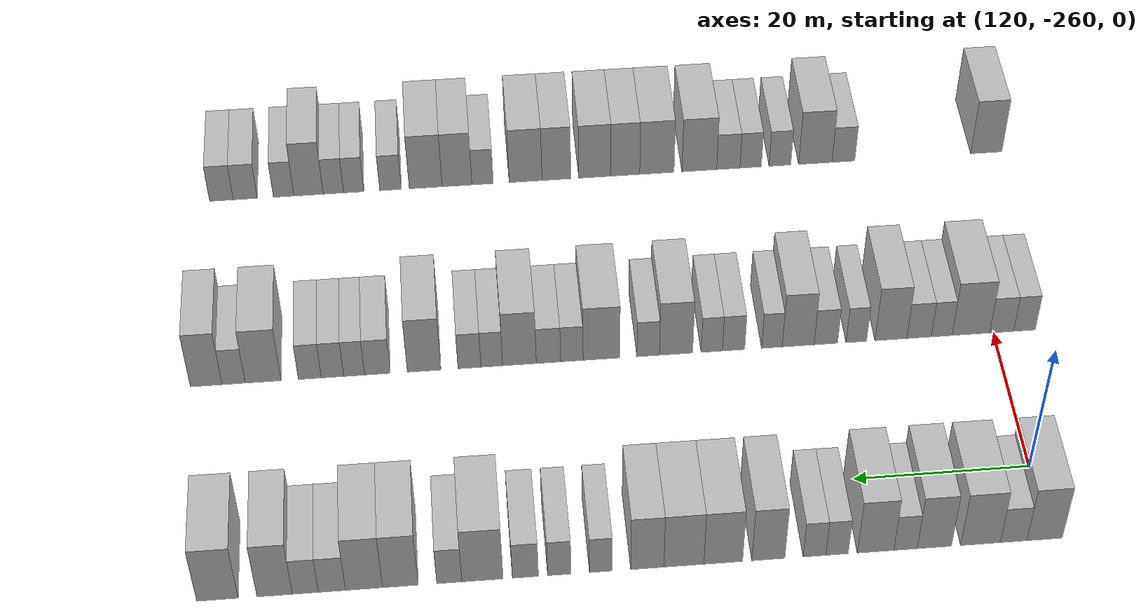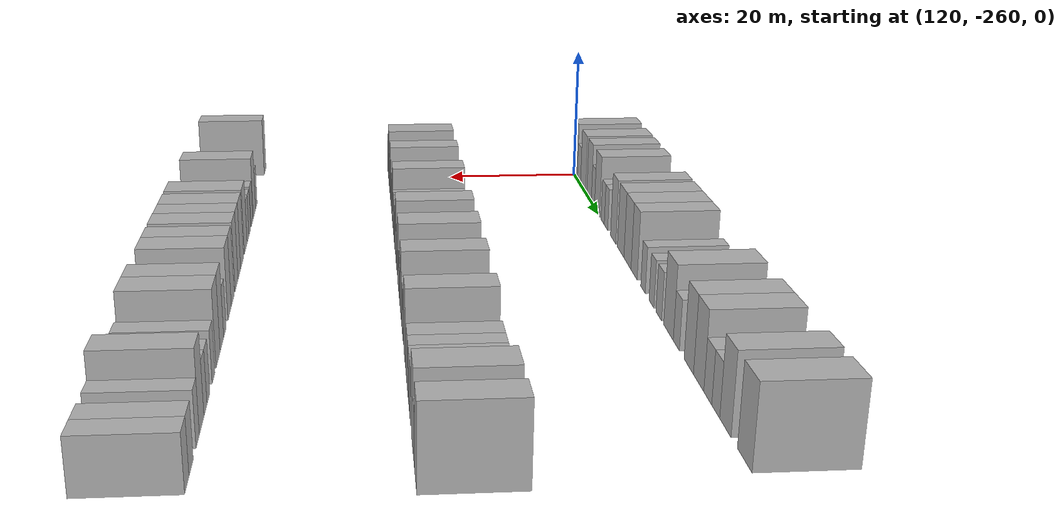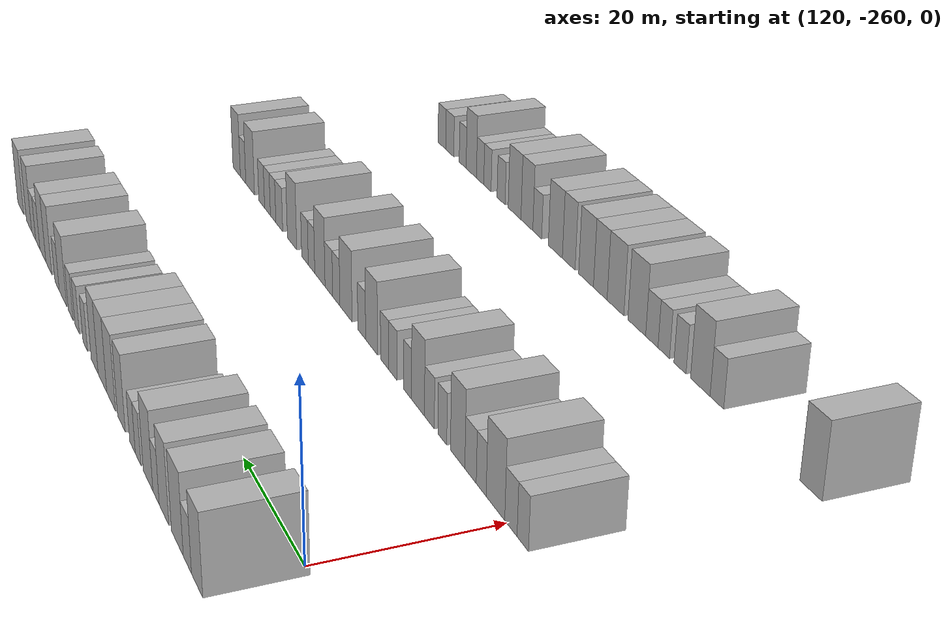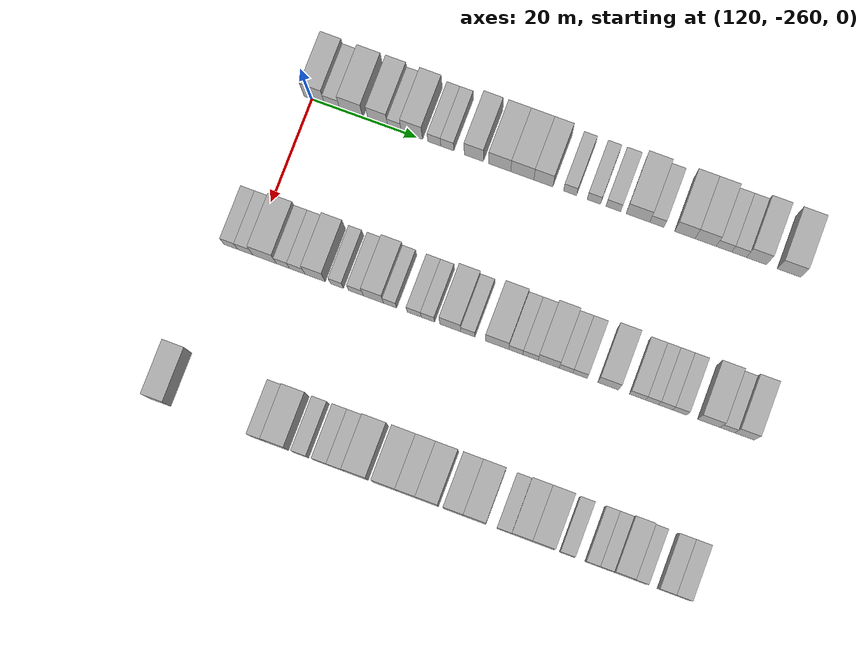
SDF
<sdf version="1.6">
 <world name="default">
  <model name="building_746">
   <static>1</static>
   <pose>115.0000 -259.4771 0 0.000000 0.000000 0.000000</pose>
   <link name="link">
    <pose>0 0 4.50 0 0 0</pose>
    <collision name="collision"><geometry><box><size>10.0000 3.9398 9.0000</size></box></geometry></collision>
    <visual name="visual">
     <cast_shadows>0</cast_shadows>
     <geometry><box><size>10.0000 3.9398 9.0000</size></box></geometry>
     <material>
      <script>
       <uri>model://HANNAS_wall/materials/scripts</uri>
       <uri>model://HANNAS_wall/materials/textures</uri>
       <name>vrc/HANNAS_wall</name>
      </script>
     </material>
    </visual>
   </link>
  </model>
  <model name="building_747">
   <static>1</static>
   <pose>115.0000 -256.0400 0 0.000000 0.000000 0.000000</pose>
   <link name="link">
    <pose>0 0 3.00 0 0 0</pose>
    <collision name="collision"><geometry><box><size>10.0000 2.9344 6.0000</size></box></geometry></collision>
    <visual name="visual">
     <cast_shadows>0</cast_shadows>
     <geometry><box><size>10.0000 2.9344 6.0000</size></box></geometry>
     <material>
      <script>
       <uri>model://HANNAS_wall/materials/scripts</uri>
       <uri>model://HANNAS_wall/materials/textures</uri>
       <name>vrc/HANNAS_wall</name>
      </script>
     </material>
    </visual>
   </link>
  </model>
  <model name="building_748">
   <static>1</static>
   <pose>115.0000 -252.3750 0 0.000000 0.000000 0.000000</pose>
   <link name="link">
    <pose>0 0 4.50 0 0 0</pose>
    <collision name="collision"><geometry><box><size>10.0000 4.3958 9.0000</size></box></geometry></collision>
    <visual name="visual">
     <cast_shadows>0</cast_shadows>
     <geometry><box><size>10.0000 4.3958 9.0000</size></box></geometry>
     <material>
      <script>
       <uri>model://HANNAS_wall/materials/scripts</uri>
       <uri>model://HANNAS_wall/materials/textures</uri>
       <name>vrc/HANNAS_wall</name>
      </script>
     </material>
    </visual>
   </link>
  </model>
  <model name="building_749">
   <static>1</static>
   <pose>115.0000 -247.2809 0 0.000000 0.000000 0.000000</pose>
   <link name="link">
    <pose>0 0 4.50 0 0 0</pose>
    <collision name="collision"><geometry><box><size>10.0000 3.7924 9.0000</size></box></geometry></collision>
    <visual name="visual">
     <cast_shadows>0</cast_shadows>
     <geometry><box><size>10.0000 3.7924 9.0000</size></box></geometry>
     <material>
      <script>
       <uri>model://HANNAS_wall/materials/scripts</uri>
       <uri>model://HANNAS_wall/materials/textures</uri>
       <name>vrc/HANNAS_wall</name>
      </script>
     </material>
    </visual>
   </link>
  </model>
  <model name="building_750">
   <static>1</static>
   <pose>115.0000 -244.1017 0 0.000000 0.000000 0.000000</pose>
   <link name="link">
    <pose>0 0 3.00 0 0 0</pose>
    <collision name="collision"><geometry><box><size>10.0000 2.5659 6.0000</size></box></geometry></collision>
    <visual name="visual">
     <cast_shadows>0</cast_shadows>
     <geometry><box><size>10.0000 2.5659 6.0000</size></box></geometry>
     <material>
      <script>
       <uri>model://HANNAS_wall/materials/scripts</uri>
       <uri>model://HANNAS_wall/materials/textures</uri>
       <name>vrc/HANNAS_wall</name>
      </script>
     </material>
    </visual>
   </link>
  </model>
  <model name="building_751">
   <static>1</static>
   <pose>115.0000 -240.8113 0 0.000000 0.000000 0.000000</pose>
   <link name="link">
    <pose>0 0 4.50 0 0 0</pose>
    <collision name="collision"><geometry><box><size>10.0000 4.0149 9.0000</size></box></geometry></collision>
    <visual name="visual">
     <cast_shadows>0</cast_shadows>
     <geometry><box><size>10.0000 4.0149 9.0000</size></box></geometry>
     <material>
      <script>
       <uri>model://HANNAS_wall/materials/scripts</uri>
       <uri>model://HANNAS_wall/materials/textures</uri>
       <name>vrc/HANNAS_wall</name>
      </script>
     </material>
    </visual>
   </link>
  </model>
  <model name="building_752">
   <static>1</static>
   <pose>115.0000 -236.5723 0 0.000000 0.000000 0.000000</pose>
   <link name="link">
    <pose>0 0 3.00 0 0 0</pose>
    <collision name="collision"><geometry><box><size>10.0000 2.4630 6.0000</size></box></geometry></collision>
    <visual name="visual">
     <cast_shadows>0</cast_shadows>
     <geometry><box><size>10.0000 2.4630 6.0000</size></box></geometry>
     <material>
      <script>
       <uri>model://HANNAS_wall/materials/scripts</uri>
       <uri>model://HANNAS_wall/materials/textures</uri>
       <name>vrc/HANNAS_wall</name>
      </script>
     </material>
    </visual>
   </link>
  </model>
  <model name="building_753">
   <static>1</static>
   <pose>115.0000 -234.1002 0 0.000000 0.000000 0.000000</pose>
   <link name="link">
    <pose>0 0 3.00 0 0 0</pose>
    <collision name="collision"><geometry><box><size>10.0000 2.4812 6.0000</size></box></geometry></collision>
    <visual name="visual">
     <cast_shadows>0</cast_shadows>
     <geometry><box><size>10.0000 2.4812 6.0000</size></box></geometry>
     <material>
      <script>
       <uri>model://HANNAS_wall/materials/scripts</uri>
       <uri>model://HANNAS_wall/materials/textures</uri>
       <name>vrc/HANNAS_wall</name>
      </script>
     </material>
    </visual>
   </link>
  </model>
  <model name="building_754">
   <static>1</static>
   <pose>115.0000 -229.0500 0 0.000000 0.000000 0.000000</pose>
   <link name="link">
    <pose>0 0 4.50 0 0 0</pose>
    <collision name="collision"><geometry><box><size>10.0000 3.6193 9.0000</size></box></geometry></collision>
    <visual name="visual">
     <cast_shadows>0</cast_shadows>
     <geometry><box><size>10.0000 3.6193 9.0000</size></box></geometry>
     <material>
      <script>
       <uri>model://HANNAS_wall/materials/scripts</uri>
       <uri>model://HANNAS_wall/materials/textures</uri>
       <name>vrc/HANNAS_wall</name>
      </script>
     </material>
    </visual>
   </link>
  </model>
  <model name="building_755">
   <static>1</static>
   <pose>115.0000 -224.1312 0 0.000000 0.000000 0.000000</pose>
   <link name="link">
    <pose>0 0 4.50 0 0 0</pose>
    <collision name="collision"><geometry><box><size>10.0000 4.2184 9.0000</size></box></geometry></collision>
    <visual name="visual">
     <cast_shadows>0</cast_shadows>
     <geometry><box><size>10.0000 4.2184 9.0000</size></box></geometry>
     <material>
      <script>
       <uri>model://HANNAS_wall/materials/scripts</uri>
       <uri>model://HANNAS_wall/materials/textures</uri>
       <name>vrc/HANNAS_wall</name>
      </script>
     </material>
    </visual>
   </link>
  </model>
  <model name="building_756">
   <static>1</static>
   <pose>115.0000 -219.8458 0 0.000000 0.000000 0.000000</pose>
   <link name="link">
    <pose>0 0 4.50 0 0 0</pose>
    <collision name="collision"><geometry><box><size>10.0000 4.3523 9.0000</size></box></geometry></collision>
    <visual name="visual">
     <cast_shadows>0</cast_shadows>
     <geometry><box><size>10.0000 4.3523 9.0000</size></box></geometry>
     <material>
      <script>
       <uri>model://HANNAS_wall/materials/scripts</uri>
       <uri>model://HANNAS_wall/materials/textures</uri>
       <name>vrc/HANNAS_wall</name>
      </script>
     </material>
    </visual>
   </link>
  </model>
  <model name="building_757">
   <static>1</static>
   <pose>115.0000 -215.8686 0 0.000000 0.000000 0.000000</pose>
   <link name="link">
    <pose>0 0 4.50 0 0 0</pose>
    <collision name="collision"><geometry><box><size>10.0000 3.6021 9.0000</size></box></geometry></collision>
    <visual name="visual">
     <cast_shadows>0</cast_shadows>
     <geometry><box><size>10.0000 3.6021 9.0000</size></box></geometry>
     <material>
      <script>
       <uri>model://HANNAS_wall/materials/scripts</uri>
       <uri>model://HANNAS_wall/materials/textures</uri>
       <name>vrc/HANNAS_wall</name>
      </script>
     </material>
    </visual>
   </link>
  </model>
  <model name="building_758">
   <static>1</static>
   <pose>115.0000 -210.8297 0 0.000000 0.000000 0.000000</pose>
   <link name="link">
    <pose>0 0 3.00 0 0 0</pose>
    <collision name="collision"><geometry><box><size>10.0000 2.4757 6.0000</size></box></geometry></collision>
    <visual name="visual">
     <cast_shadows>0</cast_shadows>
     <geometry><box><size>10.0000 2.4757 6.0000</size></box></geometry>
     <material>
      <script>
       <uri>model://HANNAS_wall/materials/scripts</uri>
       <uri>model://HANNAS_wall/materials/textures</uri>
       <name>vrc/HANNAS_wall</name>
      </script>
     </material>
    </visual>
   </link>
  </model>
  <model name="building_759">
   <static>1</static>
   <pose>115.0000 -206.3302 0 0.000000 0.000000 0.000000</pose>
   <link name="link">
    <pose>0 0 3.00 0 0 0</pose>
    <collision name="collision"><geometry><box><size>10.0000 2.5234 6.0000</size></box></geometry></collision>
    <visual name="visual">
     <cast_shadows>0</cast_shadows>
     <geometry><box><size>10.0000 2.5234 6.0000</size></box></geometry>
     <material>
      <script>
       <uri>model://HANNAS_wall/materials/scripts</uri>
       <uri>model://HANNAS_wall/materials/textures</uri>
       <name>vrc/HANNAS_wall</name>
      </script>
     </material>
    </visual>
   </link>
  </model>
  <model name="building_760">
   <static>1</static>
   <pose>115.0000 -202.6620 0 0.000000 0.000000 0.000000</pose>
   <link name="link">
    <pose>0 0 3.00 0 0 0</pose>
    <collision name="collision"><geometry><box><size>10.0000 2.8129 6.0000</size></box></geometry></collision>
    <visual name="visual">
     <cast_shadows>0</cast_shadows>
     <geometry><box><size>10.0000 2.8129 6.0000</size></box></geometry>
     <material>
      <script>
       <uri>model://HANNAS_wall/materials/scripts</uri>
       <uri>model://HANNAS_wall/materials/textures</uri>
       <name>vrc/HANNAS_wall</name>
      </script>
     </material>
    </visual>
   </link>
  </model>
  <model name="building_761">
   <static>1</static>
   <pose>115.0000 -198.0367 0 0.000000 0.000000 0.000000</pose>
   <link name="link">
    <pose>0 0 4.50 0 0 0</pose>
    <collision name="collision"><geometry><box><size>10.0000 4.4376 9.0000</size></box></geometry></collision>
    <visual name="visual">
     <cast_shadows>0</cast_shadows>
     <geometry><box><size>10.0000 4.4376 9.0000</size></box></geometry>
     <material>
      <script>
       <uri>model://HANNAS_wall/materials/scripts</uri>
       <uri>model://HANNAS_wall/materials/textures</uri>
       <name>vrc/HANNAS_wall</name>
      </script>
     </material>
    </visual>
   </link>
  </model>
  <model name="building_762">
   <static>1</static>
   <pose>115.0000 -194.4714 0 0.000000 0.000000 0.000000</pose>
   <link name="link">
    <pose>0 0 3.00 0 0 0</pose>
    <collision name="collision"><geometry><box><size>10.0000 2.6930 6.0000</size></box></geometry></collision>
    <visual name="visual">
     <cast_shadows>0</cast_shadows>
     <geometry><box><size>10.0000 2.6930 6.0000</size></box></geometry>
     <material>
      <script>
       <uri>model://HANNAS_wall/materials/scripts</uri>
       <uri>model://HANNAS_wall/materials/textures</uri>
       <name>vrc/HANNAS_wall</name>
      </script>
     </material>
    </visual>
   </link>
  </model>
  <model name="building_763">
   <static>1</static>
   <pose>115.0000 -189.2128 0 0.000000 0.000000 0.000000</pose>
   <link name="link">
    <pose>0 0 4.50 0 0 0</pose>
    <collision name="collision"><geometry><box><size>10.0000 3.8242 9.0000</size></box></geometry></collision>
    <visual name="visual">
     <cast_shadows>0</cast_shadows>
     <geometry><box><size>10.0000 3.8242 9.0000</size></box></geometry>
     <material>
      <script>
       <uri>model://HANNAS_wall/materials/scripts</uri>
       <uri>model://HANNAS_wall/materials/textures</uri>
       <name>vrc/HANNAS_wall</name>
      </script>
     </material>
    </visual>
   </link>
  </model>
  <model name="building_764">
   <static>1</static>
   <pose>115.0000 -185.3198 0 0.000000 0.000000 0.000000</pose>
   <link name="link">
    <pose>0 0 4.50 0 0 0</pose>
    <collision name="collision"><geometry><box><size>10.0000 3.9619 9.0000</size></box></geometry></collision>
    <visual name="visual">
     <cast_shadows>0</cast_shadows>
     <geometry><box><size>10.0000 3.9619 9.0000</size></box></geometry>
     <material>
      <script>
       <uri>model://HANNAS_wall/materials/scripts</uri>
       <uri>model://HANNAS_wall/materials/textures</uri>
       <name>vrc/HANNAS_wall</name>
      </script>
     </material>
    </visual>
   </link>
  </model>
  <model name="building_765">
   <static>1</static>
   <pose>115.0000 -181.8904 0 0.000000 0.000000 0.000000</pose>
   <link name="link">
    <pose>0 0 3.00 0 0 0</pose>
    <collision name="collision"><geometry><box><size>10.0000 2.8968 6.0000</size></box></geometry></collision>
    <visual name="visual">
     <cast_shadows>0</cast_shadows>
     <geometry><box><size>10.0000 2.8968 6.0000</size></box></geometry>
     <material>
      <script>
       <uri>model://HANNAS_wall/materials/scripts</uri>
       <uri>model://HANNAS_wall/materials/textures</uri>
       <name>vrc/HANNAS_wall</name>
      </script>
     </material>
    </visual>
   </link>
  </model>
  <model name="building_766">
   <static>1</static>
   <pose>115.0000 -179.0474 0 0.000000 0.000000 0.000000</pose>
   <link name="link">
    <pose>0 0 3.00 0 0 0</pose>
    <collision name="collision"><geometry><box><size>10.0000 2.7891 6.0000</size></box></geometry></collision>
    <visual name="visual">
     <cast_shadows>0</cast_shadows>
     <geometry><box><size>10.0000 2.7891 6.0000</size></box></geometry>
     <material>
      <script>
       <uri>model://HANNAS_wall/materials/scripts</uri>
       <uri>model://HANNAS_wall/materials/textures</uri>
       <name>vrc/HANNAS_wall</name>
      </script>
     </material>
    </visual>
   </link>
  </model>
  <model name="building_767">
   <static>1</static>
   <pose>115.0000 -175.7697 0 0.000000 0.000000 0.000000</pose>
   <link name="link">
    <pose>0 0 4.50 0 0 0</pose>
    <collision name="collision"><geometry><box><size>10.0000 3.7663 9.0000</size></box></geometry></collision>
    <visual name="visual">
     <cast_shadows>0</cast_shadows>
     <geometry><box><size>10.0000 3.7663 9.0000</size></box></geometry>
     <material>
      <script>
       <uri>model://HANNAS_wall/materials/scripts</uri>
       <uri>model://HANNAS_wall/materials/textures</uri>
       <name>vrc/HANNAS_wall</name>
      </script>
     </material>
    </visual>
   </link>
  </model>
  <model name="building_768">
   <static>1</static>
   <pose>115.0000 -169.6876 0 0.000000 0.000000 0.000000</pose>
   <link name="link">
    <pose>0 0 4.50 0 0 0</pose>
    <collision name="collision"><geometry><box><size>10.0000 4.3980 9.0000</size></box></geometry></collision>
    <visual name="visual">
     <cast_shadows>0</cast_shadows>
     <geometry><box><size>10.0000 4.3980 9.0000</size></box></geometry>
     <material>
      <script>
       <uri>model://HANNAS_wall/materials/scripts</uri>
       <uri>model://HANNAS_wall/materials/textures</uri>
       <name>vrc/HANNAS_wall</name>
      </script>
     </material>
    </visual>
   </link>
  </model>
  <model name="building_975">
   <static>1</static>
   <pose>145.0000 -263.6904 0 0.000000 0.000000 0.000000</pose>
   <link name="link">
    <pose>0 0 3.00 0 0 0</pose>
    <collision name="collision"><geometry><box><size>10.0000 2.6026 6.0000</size></box></geometry></collision>
    <visual name="visual">
     <cast_shadows>0</cast_shadows>
     <geometry><box><size>10.0000 2.6026 6.0000</size></box></geometry>
     <material>
      <script>
       <uri>model://HANNAS_wall/materials/scripts</uri>
       <uri>model://HANNAS_wall/materials/textures</uri>
       <name>vrc/HANNAS_wall</name>
      </script>
     </material>
    </visual>
   </link>
  </model>
  <model name="building_976">
   <static>1</static>
   <pose>145.0000 -260.9537 0 0.000000 0.000000 0.000000</pose>
   <link name="link">
    <pose>0 0 3.00 0 0 0</pose>
    <collision name="collision"><geometry><box><size>10.0000 2.8708 6.0000</size></box></geometry></collision>
    <visual name="visual">
     <cast_shadows>0</cast_shadows>
     <geometry><box><size>10.0000 2.8708 6.0000</size></box></geometry>
     <material>
      <script>
       <uri>model://HANNAS_wall/materials/scripts</uri>
       <uri>model://HANNAS_wall/materials/textures</uri>
       <name>vrc/HANNAS_wall</name>
      </script>
     </material>
    </visual>
   </link>
  </model>
  <model name="building_977">
   <static>1</static>
   <pose>145.0000 -257.2708 0 0.000000 0.000000 0.000000</pose>
   <link name="link">
    <pose>0 0 4.50 0 0 0</pose>
    <collision name="collision"><geometry><box><size>10.0000 4.4951 9.0000</size></box></geometry></collision>
    <visual name="visual">
     <cast_shadows>0</cast_shadows>
     <geometry><box><size>10.0000 4.4951 9.0000</size></box></geometry>
     <material>
      <script>
       <uri>model://HANNAS_wall/materials/scripts</uri>
       <uri>model://HANNAS_wall/materials/textures</uri>
       <name>vrc/HANNAS_wall</name>
      </script>
     </material>
    </visual>
   </link>
  </model>
  <model name="building_978">
   <static>1</static>
   <pose>145.0000 -253.7818 0 0.000000 0.000000 0.000000</pose>
   <link name="link">
    <pose>0 0 3.00 0 0 0</pose>
    <collision name="collision"><geometry><box><size>10.0000 2.4828 6.0000</size></box></geometry></collision>
    <visual name="visual">
     <cast_shadows>0</cast_shadows>
     <geometry><box><size>10.0000 2.4828 6.0000</size></box></geometry>
     <material>
      <script>
       <uri>model://HANNAS_wall/materials/scripts</uri>
       <uri>model://HANNAS_wall/materials/textures</uri>
       <name>vrc/HANNAS_wall</name>
      </script>
     </material>
    </visual>
   </link>
  </model>
  <model name="building_979">
   <static>1</static>
   <pose>145.0000 -251.0824 0 0.000000 0.000000 0.000000</pose>
   <link name="link">
    <pose>0 0 3.00 0 0 0</pose>
    <collision name="collision"><geometry><box><size>10.0000 2.9160 6.0000</size></box></geometry></collision>
    <visual name="visual">
     <cast_shadows>0</cast_shadows>
     <geometry><box><size>10.0000 2.9160 6.0000</size></box></geometry>
     <material>
      <script>
       <uri>model://HANNAS_wall/materials/scripts</uri>
       <uri>model://HANNAS_wall/materials/textures</uri>
       <name>vrc/HANNAS_wall</name>
      </script>
     </material>
    </visual>
   </link>
  </model>
  <model name="building_980">
   <static>1</static>
   <pose>145.0000 -247.7190 0 0.000000 0.000000 0.000000</pose>
   <link name="link">
    <pose>0 0 4.50 0 0 0</pose>
    <collision name="collision"><geometry><box><size>10.0000 3.8107 9.0000</size></box></geometry></collision>
    <visual name="visual">
     <cast_shadows>0</cast_shadows>
     <geometry><box><size>10.0000 3.8107 9.0000</size></box></geometry>
     <material>
      <script>
       <uri>model://HANNAS_wall/materials/scripts</uri>
       <uri>model://HANNAS_wall/materials/textures</uri>
       <name>vrc/HANNAS_wall</name>
      </script>
     </material>
    </visual>
   </link>
  </model>
  <model name="building_981">
   <static>1</static>
   <pose>145.0000 -243.5943 0 0.000000 0.000000 0.000000</pose>
   <link name="link">
    <pose>0 0 3.00 0 0 0</pose>
    <collision name="collision"><geometry><box><size>10.0000 2.4388 6.0000</size></box></geometry></collision>
    <visual name="visual">
     <cast_shadows>0</cast_shadows>
     <geometry><box><size>10.0000 2.4388 6.0000</size></box></geometry>
     <material>
      <script>
       <uri>model://HANNAS_wall/materials/scripts</uri>
       <uri>model://HANNAS_wall/materials/textures</uri>
       <name>vrc/HANNAS_wall</name>
      </script>
     </material>
    </visual>
   </link>
  </model>
  <model name="building_982">
   <static>1</static>
   <pose>145.0000 -239.9810 0 0.000000 0.000000 0.000000</pose>
   <link name="link">
    <pose>0 0 3.00 0 0 0</pose>
    <collision name="collision"><geometry><box><size>10.0000 2.7878 6.0000</size></box></geometry></collision>
    <visual name="visual">
     <cast_shadows>0</cast_shadows>
     <geometry><box><size>10.0000 2.7878 6.0000</size></box></geometry>
     <material>
      <script>
       <uri>model://HANNAS_wall/materials/scripts</uri>
       <uri>model://HANNAS_wall/materials/textures</uri>
       <name>vrc/HANNAS_wall</name>
      </script>
     </material>
    </visual>
   </link>
  </model>
  <model name="building_983">
   <static>1</static>
   <pose>145.0000 -236.6920 0 0.000000 0.000000 0.000000</pose>
   <link name="link">
    <pose>0 0 4.50 0 0 0</pose>
    <collision name="collision"><geometry><box><size>10.0000 3.7903 9.0000</size></box></geometry></collision>
    <visual name="visual">
     <cast_shadows>0</cast_shadows>
     <geometry><box><size>10.0000 3.7903 9.0000</size></box></geometry>
     <material>
      <script>
       <uri>model://HANNAS_wall/materials/scripts</uri>
       <uri>model://HANNAS_wall/materials/textures</uri>
       <name>vrc/HANNAS_wall</name>
      </script>
     </material>
    </visual>
   </link>
  </model>
  <model name="building_984">
   <static>1</static>
   <pose>145.0000 -233.5757 0 0.000000 0.000000 0.000000</pose>
   <link name="link">
    <pose>0 0 3.00 0 0 0</pose>
    <collision name="collision"><geometry><box><size>10.0000 2.4422 6.0000</size></box></geometry></collision>
    <visual name="visual">
     <cast_shadows>0</cast_shadows>
     <geometry><box><size>10.0000 2.4422 6.0000</size></box></geometry>
     <material>
      <script>
       <uri>model://HANNAS_wall/materials/scripts</uri>
       <uri>model://HANNAS_wall/materials/textures</uri>
       <name>vrc/HANNAS_wall</name>
      </script>
     </material>
    </visual>
   </link>
  </model>
  <model name="building_985">
   <static>1</static>
   <pose>145.0000 -229.0393 0 0.000000 0.000000 0.000000</pose>
   <link name="link">
    <pose>0 0 3.00 0 0 0</pose>
    <collision name="collision"><geometry><box><size>10.0000 2.6306 6.0000</size></box></geometry></collision>
    <visual name="visual">
     <cast_shadows>0</cast_shadows>
     <geometry><box><size>10.0000 2.6306 6.0000</size></box></geometry>
     <material>
      <script>
       <uri>model://HANNAS_wall/materials/scripts</uri>
       <uri>model://HANNAS_wall/materials/textures</uri>
       <name>vrc/HANNAS_wall</name>
      </script>
     </material>
    </visual>
   </link>
  </model>
  <model name="building_986">
   <static>1</static>
   <pose>145.0000 -226.4677 0 0.000000 0.000000 0.000000</pose>
   <link name="link">
    <pose>0 0 3.00 0 0 0</pose>
    <collision name="collision"><geometry><box><size>10.0000 2.5126 6.0000</size></box></geometry></collision>
    <visual name="visual">
     <cast_shadows>0</cast_shadows>
     <geometry><box><size>10.0000 2.5126 6.0000</size></box></geometry>
     <material>
      <script>
       <uri>model://HANNAS_wall/materials/scripts</uri>
       <uri>model://HANNAS_wall/materials/textures</uri>
       <name>vrc/HANNAS_wall</name>
      </script>
     </material>
    </visual>
   </link>
  </model>
  <model name="building_987">
   <static>1</static>
   <pose>145.0000 -222.2491 0 0.000000 0.000000 0.000000</pose>
   <link name="link">
    <pose>0 0 4.50 0 0 0</pose>
    <collision name="collision"><geometry><box><size>10.0000 3.9246 9.0000</size></box></geometry></collision>
    <visual name="visual">
     <cast_shadows>0</cast_shadows>
     <geometry><box><size>10.0000 3.9246 9.0000</size></box></geometry>
     <material>
      <script>
       <uri>model://HANNAS_wall/materials/scripts</uri>
       <uri>model://HANNAS_wall/materials/textures</uri>
       <name>vrc/HANNAS_wall</name>
      </script>
     </material>
    </visual>
   </link>
  </model>
  <model name="building_988">
   <static>1</static>
   <pose>145.0000 -218.9680 0 0.000000 0.000000 0.000000</pose>
   <link name="link">
    <pose>0 0 3.00 0 0 0</pose>
    <collision name="collision"><geometry><box><size>10.0000 2.6377 6.0000</size></box></geometry></collision>
    <visual name="visual">
     <cast_shadows>0</cast_shadows>
     <geometry><box><size>10.0000 2.6377 6.0000</size></box></geometry>
     <material>
      <script>
       <uri>model://HANNAS_wall/materials/scripts</uri>
       <uri>model://HANNAS_wall/materials/textures</uri>
       <name>vrc/HANNAS_wall</name>
      </script>
     </material>
    </visual>
   </link>
  </model>
  <model name="building_989">
   <static>1</static>
   <pose>145.0000 -213.4887 0 0.000000 0.000000 0.000000</pose>
   <link name="link">
    <pose>0 0 4.50 0 0 0</pose>
    <collision name="collision"><geometry><box><size>10.0000 4.3209 9.0000</size></box></geometry></collision>
    <visual name="visual">
     <cast_shadows>0</cast_shadows>
     <geometry><box><size>10.0000 4.3209 9.0000</size></box></geometry>
     <material>
      <script>
       <uri>model://HANNAS_wall/materials/scripts</uri>
       <uri>model://HANNAS_wall/materials/textures</uri>
       <name>vrc/HANNAS_wall</name>
      </script>
     </material>
    </visual>
   </link>
  </model>
  <model name="building_990">
   <static>1</static>
   <pose>145.0000 -210.0115 0 0.000000 0.000000 0.000000</pose>
   <link name="link">
    <pose>0 0 3.00 0 0 0</pose>
    <collision name="collision"><geometry><box><size>10.0000 2.6336 6.0000</size></box></geometry></collision>
    <visual name="visual">
     <cast_shadows>0</cast_shadows>
     <geometry><box><size>10.0000 2.6336 6.0000</size></box></geometry>
     <material>
      <script>
       <uri>model://HANNAS_wall/materials/scripts</uri>
       <uri>model://HANNAS_wall/materials/textures</uri>
       <name>vrc/HANNAS_wall</name>
      </script>
     </material>
    </visual>
   </link>
  </model>
  <model name="building_991">
   <static>1</static>
   <pose>145.0000 -207.2698 0 0.000000 0.000000 0.000000</pose>
   <link name="link">
    <pose>0 0 3.00 0 0 0</pose>
    <collision name="collision"><geometry><box><size>10.0000 2.8498 6.0000</size></box></geometry></collision>
    <visual name="visual">
     <cast_shadows>0</cast_shadows>
     <geometry><box><size>10.0000 2.8498 6.0000</size></box></geometry>
     <material>
      <script>
       <uri>model://HANNAS_wall/materials/scripts</uri>
       <uri>model://HANNAS_wall/materials/textures</uri>
       <name>vrc/HANNAS_wall</name>
      </script>
     </material>
    </visual>
   </link>
  </model>
  <model name="building_992">
   <static>1</static>
   <pose>145.0000 -203.8762 0 0.000000 0.000000 0.000000</pose>
   <link name="link">
    <pose>0 0 4.50 0 0 0</pose>
    <collision name="collision"><geometry><box><size>10.0000 3.9373 9.0000</size></box></geometry></collision>
    <visual name="visual">
     <cast_shadows>0</cast_shadows>
     <geometry><box><size>10.0000 3.9373 9.0000</size></box></geometry>
     <material>
      <script>
       <uri>model://HANNAS_wall/materials/scripts</uri>
       <uri>model://HANNAS_wall/materials/textures</uri>
       <name>vrc/HANNAS_wall</name>
      </script>
     </material>
    </visual>
   </link>
  </model>
  <model name="building_993">
   <static>1</static>
   <pose>145.0000 -200.6427 0 0.000000 0.000000 0.000000</pose>
   <link name="link">
    <pose>0 0 3.00 0 0 0</pose>
    <collision name="collision"><geometry><box><size>10.0000 2.5298 6.0000</size></box></geometry></collision>
    <visual name="visual">
     <cast_shadows>0</cast_shadows>
     <geometry><box><size>10.0000 2.5298 6.0000</size></box></geometry>
     <material>
      <script>
       <uri>model://HANNAS_wall/materials/scripts</uri>
       <uri>model://HANNAS_wall/materials/textures</uri>
       <name>vrc/HANNAS_wall</name>
      </script>
     </material>
    </visual>
   </link>
  </model>
  <model name="building_994">
   <static>1</static>
   <pose>145.0000 -198.0444 0 0.000000 0.000000 0.000000</pose>
   <link name="link">
    <pose>0 0 3.00 0 0 0</pose>
    <collision name="collision"><geometry><box><size>10.0000 2.6668 6.0000</size></box></geometry></collision>
    <visual name="visual">
     <cast_shadows>0</cast_shadows>
     <geometry><box><size>10.0000 2.6668 6.0000</size></box></geometry>
     <material>
      <script>
       <uri>model://HANNAS_wall/materials/scripts</uri>
       <uri>model://HANNAS_wall/materials/textures</uri>
       <name>vrc/HANNAS_wall</name>
      </script>
     </material>
    </visual>
   </link>
  </model>
  <model name="building_995">
   <static>1</static>
   <pose>145.0000 -192.7672 0 0.000000 0.000000 0.000000</pose>
   <link name="link">
    <pose>0 0 4.50 0 0 0</pose>
    <collision name="collision"><geometry><box><size>10.0000 3.8876 9.0000</size></box></geometry></collision>
    <visual name="visual">
     <cast_shadows>0</cast_shadows>
     <geometry><box><size>10.0000 3.8876 9.0000</size></box></geometry>
     <material>
      <script>
       <uri>model://HANNAS_wall/materials/scripts</uri>
       <uri>model://HANNAS_wall/materials/textures</uri>
       <name>vrc/HANNAS_wall</name>
      </script>
     </material>
    </visual>
   </link>
  </model>
  <model name="building_996">
   <static>1</static>
   <pose>145.0000 -187.3384 0 0.000000 0.000000 0.000000</pose>
   <link name="link">
    <pose>0 0 3.00 0 0 0</pose>
    <collision name="collision"><geometry><box><size>10.0000 2.9699 6.0000</size></box></geometry></collision>
    <visual name="visual">
     <cast_shadows>0</cast_shadows>
     <geometry><box><size>10.0000 2.9699 6.0000</size></box></geometry>
     <material>
      <script>
       <uri>model://HANNAS_wall/materials/scripts</uri>
       <uri>model://HANNAS_wall/materials/textures</uri>
       <name>vrc/HANNAS_wall</name>
      </script>
     </material>
    </visual>
   </link>
  </model>
  <model name="building_997">
   <static>1</static>
   <pose>145.0000 -184.6407 0 0.000000 0.000000 0.000000</pose>
   <link name="link">
    <pose>0 0 3.00 0 0 0</pose>
    <collision name="collision"><geometry><box><size>10.0000 2.4256 6.0000</size></box></geometry></collision>
    <visual name="visual">
     <cast_shadows>0</cast_shadows>
     <geometry><box><size>10.0000 2.4256 6.0000</size></box></geometry>
     <material>
      <script>
       <uri>model://HANNAS_wall/materials/scripts</uri>
       <uri>model://HANNAS_wall/materials/textures</uri>
       <name>vrc/HANNAS_wall</name>
      </script>
     </material>
    </visual>
   </link>
  </model>
  <model name="building_998">
   <static>1</static>
   <pose>145.0000 -182.1314 0 0.000000 0.000000 0.000000</pose>
   <link name="link">
    <pose>0 0 3.00 0 0 0</pose>
    <collision name="collision"><geometry><box><size>10.0000 2.5929 6.0000</size></box></geometry></collision>
    <visual name="visual">
     <cast_shadows>0</cast_shadows>
     <geometry><box><size>10.0000 2.5929 6.0000</size></box></geometry>
     <material>
      <script>
       <uri>model://HANNAS_wall/materials/scripts</uri>
       <uri>model://HANNAS_wall/materials/textures</uri>
       <name>vrc/HANNAS_wall</name>
      </script>
     </material>
    </visual>
   </link>
  </model>
  <model name="building_999">
   <static>1</static>
   <pose>145.0000 -179.5133 0 0.000000 0.000000 0.000000</pose>
   <link name="link">
    <pose>0 0 3.00 0 0 0</pose>
    <collision name="collision"><geometry><box><size>10.0000 2.6433 6.0000</size></box></geometry></collision>
    <visual name="visual">
     <cast_shadows>0</cast_shadows>
     <geometry><box><size>10.0000 2.6433 6.0000</size></box></geometry>
     <material>
      <script>
       <uri>model://HANNAS_wall/materials/scripts</uri>
       <uri>model://HANNAS_wall/materials/textures</uri>
       <name>vrc/HANNAS_wall</name>
      </script>
     </material>
    </visual>
   </link>
  </model>
  <model name="building_1000">
   <static>1</static>
   <pose>145.0000 -174.1214 0 0.000000 0.000000 0.000000</pose>
   <link name="link">
    <pose>0 0 4.50 0 0 0</pose>
    <collision name="collision"><geometry><box><size>10.0000 4.1405 9.0000</size></box></geometry></collision>
    <visual name="visual">
     <cast_shadows>0</cast_shadows>
     <geometry><box><size>10.0000 4.1405 9.0000</size></box></geometry>
     <material>
      <script>
       <uri>model://HANNAS_wall/materials/scripts</uri>
       <uri>model://HANNAS_wall/materials/textures</uri>
       <name>vrc/HANNAS_wall</name>
      </script>
     </material>
    </visual>
   </link>
  </model>
  <model name="building_1001">
   <static>1</static>
   <pose>145.0000 -170.7130 0 0.000000 0.000000 0.000000</pose>
   <link name="link">
    <pose>0 0 3.00 0 0 0</pose>
    <collision name="collision"><geometry><box><size>10.0000 2.6762 6.0000</size></box></geometry></collision>
    <visual name="visual">
     <cast_shadows>0</cast_shadows>
     <geometry><box><size>10.0000 2.6762 6.0000</size></box></geometry>
     <material>
      <script>
       <uri>model://HANNAS_wall/materials/scripts</uri>
       <uri>model://HANNAS_wall/materials/textures</uri>
       <name>vrc/HANNAS_wall</name>
      </script>
     </material>
    </visual>
   </link>
  </model>
  <model name="building_1002">
   <static>1</static>
   <pose>145.0000 -167.5554 0 0.000000 0.000000 0.000000</pose>
   <link name="link">
    <pose>0 0 4.50 0 0 0</pose>
    <collision name="collision"><geometry><box><size>10.0000 3.6390 9.0000</size></box></geometry></collision>
    <visual name="visual">
     <cast_shadows>0</cast_shadows>
     <geometry><box><size>10.0000 3.6390 9.0000</size></box></geometry>
     <material>
      <script>
       <uri>model://HANNAS_wall/materials/scripts</uri>
       <uri>model://HANNAS_wall/materials/textures</uri>
       <name>vrc/HANNAS_wall</name>
      </script>
     </material>
    </visual>
   </link>
  </model>
  <model name="building_1209">
   <static>1</static>
   <pose>175.0000 -265.2041 0 0.000000 0.000000 0.000000</pose>
   <link name="link">
    <pose>0 0 4.50 0 0 0</pose>
    <collision name="collision"><geometry><box><size>10.0000 4.0188 9.0000</size></box></geometry></collision>
    <visual name="visual">
     <cast_shadows>0</cast_shadows>
     <geometry><box><size>10.0000 4.0188 9.0000</size></box></geometry>
     <material>
      <script>
       <uri>model://HANNAS_wall/materials/scripts</uri>
       <uri>model://HANNAS_wall/materials/textures</uri>
       <name>vrc/HANNAS_wall</name>
      </script>
     </material>
    </visual>
   </link>
  </model>
  <model name="building_1210">
   <static>1</static>
   <pose>175.0000 -246.8428 0 0.000000 0.000000 0.000000</pose>
   <link name="link">
    <pose>0 0 3.00 0 0 0</pose>
    <collision name="collision"><geometry><box><size>10.0000 2.9013 6.0000</size></box></geometry></collision>
    <visual name="visual">
     <cast_shadows>0</cast_shadows>
     <geometry><box><size>10.0000 2.9013 6.0000</size></box></geometry>
     <material>
      <script>
       <uri>model://HANNAS_wall/materials/scripts</uri>
       <uri>model://HANNAS_wall/materials/textures</uri>
       <name>vrc/HANNAS_wall</name>
      </script>
     </material>
    </visual>
   </link>
  </model>
  <model name="building_1211">
   <static>1</static>
   <pose>175.0000 -243.2546 0 0.000000 0.000000 0.000000</pose>
   <link name="link">
    <pose>0 0 4.50 0 0 0</pose>
    <collision name="collision"><geometry><box><size>10.0000 4.2751 9.0000</size></box></geometry></collision>
    <visual name="visual">
     <cast_shadows>0</cast_shadows>
     <geometry><box><size>10.0000 4.2751 9.0000</size></box></geometry>
     <material>
      <script>
       <uri>model://HANNAS_wall/materials/scripts</uri>
       <uri>model://HANNAS_wall/materials/textures</uri>
       <name>vrc/HANNAS_wall</name>
      </script>
     </material>
    </visual>
   </link>
  </model>
  <model name="building_1212">
   <static>1</static>
   <pose>175.0000 -238.7362 0 0.000000 0.000000 0.000000</pose>
   <link name="link">
    <pose>0 0 3.00 0 0 0</pose>
    <collision name="collision"><geometry><box><size>10.0000 2.7617 6.0000</size></box></geometry></collision>
    <visual name="visual">
     <cast_shadows>0</cast_shadows>
     <geometry><box><size>10.0000 2.7617 6.0000</size></box></geometry>
     <material>
      <script>
       <uri>model://HANNAS_wall/materials/scripts</uri>
       <uri>model://HANNAS_wall/materials/textures</uri>
       <name>vrc/HANNAS_wall</name>
      </script>
     </material>
    </visual>
   </link>
  </model>
  <model name="building_1213">
   <static>1</static>
   <pose>175.0000 -234.9952 0 0.000000 0.000000 0.000000</pose>
   <link name="link">
    <pose>0 0 3.00 0 0 0</pose>
    <collision name="collision"><geometry><box><size>10.0000 2.7204 6.0000</size></box></geometry></collision>
    <visual name="visual">
     <cast_shadows>0</cast_shadows>
     <geometry><box><size>10.0000 2.7204 6.0000</size></box></geometry>
     <material>
      <script>
       <uri>model://HANNAS_wall/materials/scripts</uri>
       <uri>model://HANNAS_wall/materials/textures</uri>
       <name>vrc/HANNAS_wall</name>
      </script>
     </material>
    </visual>
   </link>
  </model>
  <model name="building_1214">
   <static>1</static>
   <pose>175.0000 -232.1556 0 0.000000 0.000000 0.000000</pose>
   <link name="link">
    <pose>0 0 3.00 0 0 0</pose>
    <collision name="collision"><geometry><box><size>10.0000 2.9587 6.0000</size></box></geometry></collision>
    <visual name="visual">
     <cast_shadows>0</cast_shadows>
     <geometry><box><size>10.0000 2.9587 6.0000</size></box></geometry>
     <material>
      <script>
       <uri>model://HANNAS_wall/materials/scripts</uri>
       <uri>model://HANNAS_wall/materials/textures</uri>
       <name>vrc/HANNAS_wall</name>
      </script>
     </material>
    </visual>
   </link>
  </model>
  <model name="building_1215">
   <static>1</static>
   <pose>175.0000 -228.4685 0 0.000000 0.000000 0.000000</pose>
   <link name="link">
    <pose>0 0 4.50 0 0 0</pose>
    <collision name="collision"><geometry><box><size>10.0000 4.4154 9.0000</size></box></geometry></collision>
    <visual name="visual">
     <cast_shadows>0</cast_shadows>
     <geometry><box><size>10.0000 4.4154 9.0000</size></box></geometry>
     <material>
      <script>
       <uri>model://HANNAS_wall/materials/scripts</uri>
       <uri>model://HANNAS_wall/materials/textures</uri>
       <name>vrc/HANNAS_wall</name>
      </script>
     </material>
    </visual>
   </link>
  </model>
  <model name="building_1216">
   <static>1</static>
   <pose>175.0000 -223.0864 0 0.000000 0.000000 0.000000</pose>
   <link name="link">
    <pose>0 0 4.50 0 0 0</pose>
    <collision name="collision"><geometry><box><size>10.0000 4.3488 9.0000</size></box></geometry></collision>
    <visual name="visual">
     <cast_shadows>0</cast_shadows>
     <geometry><box><size>10.0000 4.3488 9.0000</size></box></geometry>
     <material>
      <script>
       <uri>model://HANNAS_wall/materials/scripts</uri>
       <uri>model://HANNAS_wall/materials/textures</uri>
       <name>vrc/HANNAS_wall</name>
      </script>
     </material>
    </visual>
   </link>
  </model>
  <model name="building_1217">
   <static>1</static>
   <pose>175.0000 -219.0945 0 0.000000 0.000000 0.000000</pose>
   <link name="link">
    <pose>0 0 4.50 0 0 0</pose>
    <collision name="collision"><geometry><box><size>10.0000 3.6349 9.0000</size></box></geometry></collision>
    <visual name="visual">
     <cast_shadows>0</cast_shadows>
     <geometry><box><size>10.0000 3.6349 9.0000</size></box></geometry>
     <material>
      <script>
       <uri>model://HANNAS_wall/materials/scripts</uri>
       <uri>model://HANNAS_wall/materials/textures</uri>
       <name>vrc/HANNAS_wall</name>
      </script>
     </material>
    </visual>
   </link>
  </model>
  <model name="building_1218">
   <static>1</static>
   <pose>175.0000 -215.2443 0 0.000000 0.000000 0.000000</pose>
   <link name="link">
    <pose>0 0 4.50 0 0 0</pose>
    <collision name="collision"><geometry><box><size>10.0000 4.0655 9.0000</size></box></geometry></collision>
    <visual name="visual">
     <cast_shadows>0</cast_shadows>
     <geometry><box><size>10.0000 4.0655 9.0000</size></box></geometry>
     <material>
      <script>
       <uri>model://HANNAS_wall/materials/scripts</uri>
       <uri>model://HANNAS_wall/materials/textures</uri>
       <name>vrc/HANNAS_wall</name>
      </script>
     </material>
    </visual>
   </link>
  </model>
  <model name="building_1219">
   <static>1</static>
   <pose>175.0000 -210.3919 0 0.000000 0.000000 0.000000</pose>
   <link name="link">
    <pose>0 0 4.50 0 0 0</pose>
    <collision name="collision"><geometry><box><size>10.0000 3.6393 9.0000</size></box></geometry></collision>
    <visual name="visual">
     <cast_shadows>0</cast_shadows>
     <geometry><box><size>10.0000 3.6393 9.0000</size></box></geometry>
     <material>
      <script>
       <uri>model://HANNAS_wall/materials/scripts</uri>
       <uri>model://HANNAS_wall/materials/textures</uri>
       <name>vrc/HANNAS_wall</name>
      </script>
     </material>
    </visual>
   </link>
  </model>
  <model name="building_1220">
   <static>1</static>
   <pose>175.0000 -206.5065 0 0.000000 0.000000 0.000000</pose>
   <link name="link">
    <pose>0 0 4.50 0 0 0</pose>
    <collision name="collision"><geometry><box><size>10.0000 4.1314 9.0000</size></box></geometry></collision>
    <visual name="visual">
     <cast_shadows>0</cast_shadows>
     <geometry><box><size>10.0000 4.1314 9.0000</size></box></geometry>
     <material>
      <script>
       <uri>model://HANNAS_wall/materials/scripts</uri>
       <uri>model://HANNAS_wall/materials/textures</uri>
       <name>vrc/HANNAS_wall</name>
      </script>
     </material>
    </visual>
   </link>
  </model>
  <model name="building_1221">
   <static>1</static>
   <pose>175.0000 -201.0951 0 0.000000 0.000000 0.000000</pose>
   <link name="link">
    <pose>0 0 3.00 0 0 0</pose>
    <collision name="collision"><geometry><box><size>10.0000 2.6915 6.0000</size></box></geometry></collision>
    <visual name="visual">
     <cast_shadows>0</cast_shadows>
     <geometry><box><size>10.0000 2.6915 6.0000</size></box></geometry>
     <material>
      <script>
       <uri>model://HANNAS_wall/materials/scripts</uri>
       <uri>model://HANNAS_wall/materials/textures</uri>
       <name>vrc/HANNAS_wall</name>
      </script>
     </material>
    </visual>
   </link>
  </model>
  <model name="building_1222">
   <static>1</static>
   <pose>175.0000 -197.8871 0 0.000000 0.000000 0.000000</pose>
   <link name="link">
    <pose>0 0 4.50 0 0 0</pose>
    <collision name="collision"><geometry><box><size>10.0000 3.7244 9.0000</size></box></geometry></collision>
    <visual name="visual">
     <cast_shadows>0</cast_shadows>
     <geometry><box><size>10.0000 3.7244 9.0000</size></box></geometry>
     <material>
      <script>
       <uri>model://HANNAS_wall/materials/scripts</uri>
       <uri>model://HANNAS_wall/materials/textures</uri>
       <name>vrc/HANNAS_wall</name>
      </script>
     </material>
    </visual>
   </link>
  </model>
  <model name="building_1223">
   <static>1</static>
   <pose>175.0000 -193.9689 0 0.000000 0.000000 0.000000</pose>
   <link name="link">
    <pose>0 0 4.50 0 0 0</pose>
    <collision name="collision"><geometry><box><size>10.0000 4.1120 9.0000</size></box></geometry></collision>
    <visual name="visual">
     <cast_shadows>0</cast_shadows>
     <geometry><box><size>10.0000 4.1120 9.0000</size></box></geometry>
     <material>
      <script>
       <uri>model://HANNAS_wall/materials/scripts</uri>
       <uri>model://HANNAS_wall/materials/textures</uri>
       <name>vrc/HANNAS_wall</name>
      </script>
     </material>
    </visual>
   </link>
  </model>
  <model name="building_1224">
   <static>1</static>
   <pose>175.0000 -189.5684 0 0.000000 0.000000 0.000000</pose>
   <link name="link">
    <pose>0 0 3.00 0 0 0</pose>
    <collision name="collision"><geometry><box><size>10.0000 2.6891 6.0000</size></box></geometry></collision>
    <visual name="visual">
     <cast_shadows>0</cast_shadows>
     <geometry><box><size>10.0000 2.6891 6.0000</size></box></geometry>
     <material>
      <script>
       <uri>model://HANNAS_wall/materials/scripts</uri>
       <uri>model://HANNAS_wall/materials/textures</uri>
       <name>vrc/HANNAS_wall</name>
      </script>
     </material>
    </visual>
   </link>
  </model>
  <model name="building_1225">
   <static>1</static>
   <pose>175.0000 -184.9648 0 0.000000 0.000000 0.000000</pose>
   <link name="link">
    <pose>0 0 3.00 0 0 0</pose>
    <collision name="collision"><geometry><box><size>10.0000 2.5182 6.0000</size></box></geometry></collision>
    <visual name="visual">
     <cast_shadows>0</cast_shadows>
     <geometry><box><size>10.0000 2.5182 6.0000</size></box></geometry>
     <material>
      <script>
       <uri>model://HANNAS_wall/materials/scripts</uri>
       <uri>model://HANNAS_wall/materials/textures</uri>
       <name>vrc/HANNAS_wall</name>
      </script>
     </material>
    </visual>
   </link>
  </model>
  <model name="building_1226">
   <static>1</static>
   <pose>175.0000 -182.4327 0 0.000000 0.000000 0.000000</pose>
   <link name="link">
    <pose>0 0 3.00 0 0 0</pose>
    <collision name="collision"><geometry><box><size>10.0000 2.5460 6.0000</size></box></geometry></collision>
    <visual name="visual">
     <cast_shadows>0</cast_shadows>
     <geometry><box><size>10.0000 2.5460 6.0000</size></box></geometry>
     <material>
      <script>
       <uri>model://HANNAS_wall/materials/scripts</uri>
       <uri>model://HANNAS_wall/materials/textures</uri>
       <name>vrc/HANNAS_wall</name>
      </script>
     </material>
    </visual>
   </link>
  </model>
  <model name="building_1227">
   <static>1</static>
   <pose>175.0000 -179.3333 0 0.000000 0.000000 0.000000</pose>
   <link name="link">
    <pose>0 0 4.50 0 0 0</pose>
    <collision name="collision"><geometry><box><size>10.0000 3.6528 9.0000</size></box></geometry></collision>
    <visual name="visual">
     <cast_shadows>0</cast_shadows>
     <geometry><box><size>10.0000 3.6528 9.0000</size></box></geometry>
     <material>
      <script>
       <uri>model://HANNAS_wall/materials/scripts</uri>
       <uri>model://HANNAS_wall/materials/textures</uri>
       <name>vrc/HANNAS_wall</name>
      </script>
     </material>
    </visual>
   </link>
  </model>
  <model name="building_1228">
   <static>1</static>
   <pose>175.0000 -176.2352 0 0.000000 0.000000 0.000000</pose>
   <link name="link">
    <pose>0 0 3.00 0 0 0</pose>
    <collision name="collision"><geometry><box><size>10.0000 2.5434 6.0000</size></box></geometry></collision>
    <visual name="visual">
     <cast_shadows>0</cast_shadows>
     <geometry><box><size>10.0000 2.5434 6.0000</size></box></geometry>
     <material>
      <script>
       <uri>model://HANNAS_wall/materials/scripts</uri>
       <uri>model://HANNAS_wall/materials/textures</uri>
       <name>vrc/HANNAS_wall</name>
      </script>
     </material>
    </visual>
   </link>
  </model>
  <model name="building_1229">
   <static>1</static>
   <pose>175.0000 -171.4703 0 0.000000 0.000000 0.000000</pose>
   <link name="link">
    <pose>0 0 3.00 0 0 0</pose>
    <collision name="collision"><geometry><box><size>10.0000 2.9865 6.0000</size></box></geometry></collision>
    <visual name="visual">
     <cast_shadows>0</cast_shadows>
     <geometry><box><size>10.0000 2.9865 6.0000</size></box></geometry>
     <material>
      <script>
       <uri>model://HANNAS_wall/materials/scripts</uri>
       <uri>model://HANNAS_wall/materials/textures</uri>
       <name>vrc/HANNAS_wall</name>
      </script>
     </material>
    </visual>
   </link>
  </model>
  <model name="building_1230">
   <static>1</static>
   <pose>175.0000 -168.5157 0 0.000000 0.000000 0.000000</pose>
   <link name="link">
    <pose>0 0 3.00 0 0 0</pose>
    <collision name="collision"><geometry><box><size>10.0000 2.9228 6.0000</size></box></geometry></collision>
    <visual name="visual">
     <cast_shadows>0</cast_shadows>
     <geometry><box><size>10.0000 2.9228 6.0000</size></box></geometry>
     <material>
      <script>
       <uri>model://HANNAS_wall/materials/scripts</uri>
       <uri>model://HANNAS_wall/materials/textures</uri>
       <name>vrc/HANNAS_wall</name>
      </script>
     </material>
    </visual>
   </link>
  </model>
 </world>
</sdf>
